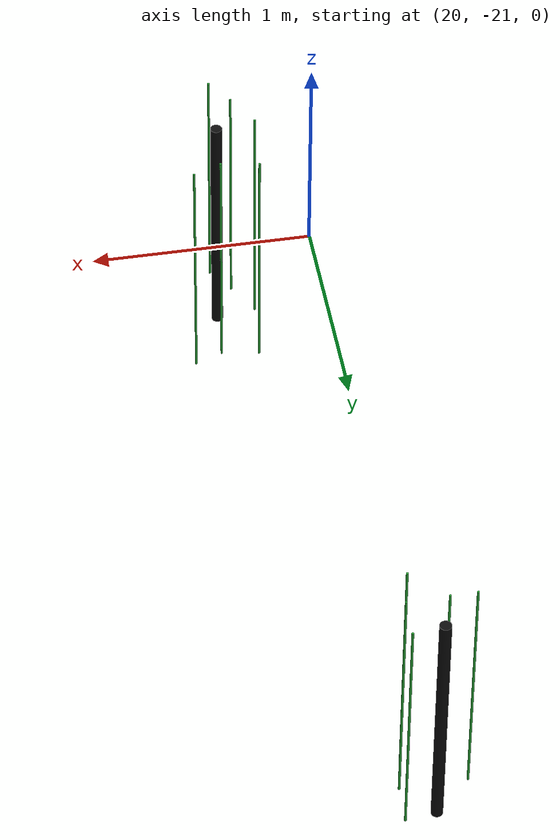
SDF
<sdf version="1.6">
 <world name="default">
  <model name="pole_11">
   <static>1</static>
   <pose>20.08 -17.6 0.575 0 -0 0</pose>
   <link name="link">
    <collision name="collision">
     <geometry><cylinder><length>1.15</length><radius>0.025</radius></cylinder></geometry>
    </collision>
    <visual name="visual">
     <geometry><cylinder><length>1.15</length><radius>0.025</radius></cylinder></geometry>
     <material>
      <script><uri>file://media/materials/scripts/gazebo.material</uri><name>Gazebo/Chrome</name></script>
      <shader type="vertex"><normal_map>__default__</normal_map></shader>
      <emissive>0.1 0.1 0.1 1</emissive>
      <specular>0.01 0.01 0.01 1</specular>
      <ambient>0.5 0.5 0.5 1</ambient>
      <diffuse>0.05 0.05 0.05 1</diffuse>
     </material>
    </visual>
   </link>
  </model>
  <model name="pole_12">
   <static>1</static>
   <pose>20.5 -20.55 0.575 0 -0 0</pose>
   <link name="link">
    <collision name="collision">
     <geometry><cylinder><length>1.15</length><radius>0.025</radius></cylinder></geometry>
    </collision>
    <visual name="visual">
     <geometry><cylinder><length>1.15</length><radius>0.025</radius></cylinder></geometry>
     <material>
      <script><uri>file://media/materials/scripts/gazebo.material</uri><name>Gazebo/Chrome</name></script>
      <shader type="vertex"><normal_map>__default__</normal_map></shader>
      <emissive>0.1 0.1 0.1 1</emissive>
      <specular>0.01 0.01 0.01 1</specular>
      <ambient>0.5 0.5 0.5 1</ambient>
      <diffuse>0.05 0.05 0.05 1</diffuse>
     </material>
    </visual>
   </link>
  </model>
  <model name="pole_27_clone_clone_106">
   <link name="link">
    <inertial>
     <mass>1</mass>
     <inertia><ixx>1</ixx><ixy>0</ixy><ixz>0</ixz><iyy>1</iyy><iyz>0</iyz><izz>1</izz></inertia>
    </inertial>
    <visual name="visual">
     <geometry><cylinder><length>1.15</length><radius>0.005</radius></cylinder></geometry>
     <material>
      <script><uri>file://media/materials/scripts/gazebo.material</uri><name>Gazebo/Green</name></script>
      <shader type="vertex"><normal_map>__default__</normal_map></shader>
      <emissive>0 0.1 0 1</emissive>
      <specular>0 0.01 0 1</specular>
      <ambient>0 0.5 0 1</ambient>
      <diffuse>0 0.05 0 1</diffuse>
     </material>
    </visual>
    <collision name="collision">
     <geometry><cylinder><radius>0.005</radius><length>1.15</length></cylinder></geometry>
     <surface>
      <friction>
       <ode><mu>1</mu><mu2>1</mu2><fdir1>0 0 0</fdir1><slip1>0</slip1><slip2>0</slip2></ode>
       <torsional>
        <coefficient>1</coefficient>
        <patch_radius>0</patch_radius>
        <surface_radius>0</surface_radius>
        <use_patch_radius>1</use_patch_radius>
        <ode><slip>0</slip></ode>
       </torsional>
      </friction>
      <bounce><restitution_coefficient>0</restitution_coefficient><threshold>1e+06</threshold></bounce>
      <contact>
       <collide_without_contact>0</collide_without_contact>
       <collide_without_contact_bitmask>1</collide_without_contact_bitmask>
       <collide_bitmask>1</collide_bitmask>
       <ode>
        <soft_cfm>0</soft_cfm>
        <soft_erp>0.2</soft_erp>
        <kp>1e+13</kp>
        <kd>1</kd>
        <max_vel>0.01</max_vel>
        <min_depth>0</min_depth>
       </ode>
       <bullet>
        <split_impulse>1</split_impulse>
        <split_impulse_penetration_threshold>-0.01</split_impulse_penetration_threshold>
        <soft_cfm>0</soft_cfm>
        <soft_erp>0.2</soft_erp>
        <kp>1e+13</kp>
        <kd>1</kd>
       </bullet>
      </contact>
     </surface>
    </collision>
   </link>
   <static>1</static>
   <pose>19.9208 -17.7497 0.575 0 -0 0</pose>
  </model>
  <model name="pole_27_clone_clone_111">
   <link name="link">
    <inertial>
     <mass>1</mass>
     <inertia><ixx>1</ixx><ixy>0</ixy><ixz>0</ixz><iyy>1</iyy><iyz>0</iyz><izz>1</izz></inertia>
    </inertial>
    <visual name="visual">
     <geometry><cylinder><length>1.15</length><radius>0.005</radius></cylinder></geometry>
     <material>
      <script><uri>file://media/materials/scripts/gazebo.material</uri><name>Gazebo/Green</name></script>
      <shader type="vertex"><normal_map>__default__</normal_map></shader>
      <emissive>0 0.1 0 1</emissive>
      <specular>0 0.01 0 1</specular>
      <ambient>0 0.5 0 1</ambient>
      <diffuse>0 0.05 0 1</diffuse>
     </material>
    </visual>
    <collision name="collision">
     <geometry><cylinder><radius>0.005</radius><length>1.15</length></cylinder></geometry>
     <surface>
      <friction>
       <ode><mu>1</mu><mu2>1</mu2><fdir1>0 0 0</fdir1><slip1>0</slip1><slip2>0</slip2></ode>
       <torsional>
        <coefficient>1</coefficient>
        <patch_radius>0</patch_radius>
        <surface_radius>0</surface_radius>
        <use_patch_radius>1</use_patch_radius>
        <ode><slip>0</slip></ode>
       </torsional>
      </friction>
      <bounce><restitution_coefficient>0</restitution_coefficient><threshold>1e+06</threshold></bounce>
      <contact>
       <collide_without_contact>0</collide_without_contact>
       <collide_without_contact_bitmask>1</collide_without_contact_bitmask>
       <collide_bitmask>1</collide_bitmask>
       <ode>
        <soft_cfm>0</soft_cfm>
        <soft_erp>0.2</soft_erp>
        <kp>1e+13</kp>
        <kd>1</kd>
        <max_vel>0.01</max_vel>
        <min_depth>0</min_depth>
       </ode>
       <bullet>
        <split_impulse>1</split_impulse>
        <split_impulse_penetration_threshold>-0.01</split_impulse_penetration_threshold>
        <soft_cfm>0</soft_cfm>
        <soft_erp>0.2</soft_erp>
        <kp>1e+13</kp>
        <kd>1</kd>
       </bullet>
      </contact>
     </surface>
    </collision>
   </link>
   <static>1</static>
   <pose>20.0321 -17.7493 0.575 0 -0 0</pose>
  </model>
  <model name="pole_27_clone_clone_112">
   <link name="link">
    <inertial>
     <mass>1</mass>
     <inertia><ixx>1</ixx><ixy>0</ixy><ixz>0</ixz><iyy>1</iyy><iyz>0</iyz><izz>1</izz></inertia>
    </inertial>
    <visual name="visual">
     <geometry><cylinder><length>1.15</length><radius>0.005</radius></cylinder></geometry>
     <material>
      <script><uri>file://media/materials/scripts/gazebo.material</uri><name>Gazebo/Green</name></script>
      <shader type="vertex"><normal_map>__default__</normal_map></shader>
      <emissive>0 0.1 0 1</emissive>
      <specular>0 0.01 0 1</specular>
      <ambient>0 0.5 0 1</ambient>
      <diffuse>0 0.05 0 1</diffuse>
     </material>
    </visual>
    <collision name="collision">
     <geometry><cylinder><radius>0.005</radius><length>1.15</length></cylinder></geometry>
     <surface>
      <friction>
       <ode><mu>1</mu><mu2>1</mu2><fdir1>0 0 0</fdir1><slip1>0</slip1><slip2>0</slip2></ode>
       <torsional>
        <coefficient>1</coefficient>
        <patch_radius>0</patch_radius>
        <surface_radius>0</surface_radius>
        <use_patch_radius>1</use_patch_radius>
        <ode><slip>0</slip></ode>
       </torsional>
      </friction>
      <bounce><restitution_coefficient>0</restitution_coefficient><threshold>1e+06</threshold></bounce>
      <contact>
       <collide_without_contact>0</collide_without_contact>
       <collide_without_contact_bitmask>1</collide_without_contact_bitmask>
       <collide_bitmask>1</collide_bitmask>
       <ode>
        <soft_cfm>0</soft_cfm>
        <soft_erp>0.2</soft_erp>
        <kp>1e+13</kp>
        <kd>1</kd>
        <max_vel>0.01</max_vel>
        <min_depth>0</min_depth>
       </ode>
       <bullet>
        <split_impulse>1</split_impulse>
        <split_impulse_penetration_threshold>-0.01</split_impulse_penetration_threshold>
        <soft_cfm>0</soft_cfm>
        <soft_erp>0.2</soft_erp>
        <kp>1e+13</kp>
        <kd>1</kd>
       </bullet>
      </contact>
     </surface>
    </collision>
   </link>
   <static>1</static>
   <pose>20.2079 -17.7436 0.575 0 -0 0</pose>
  </model>
  <model name="pole_27_clone_clone_113">
   <link name="link">
    <inertial>
     <mass>1</mass>
     <inertia><ixx>1</ixx><ixy>0</ixy><ixz>0</ixz><iyy>1</iyy><iyz>0</iyz><izz>1</izz></inertia>
    </inertial>
    <visual name="visual">
     <geometry><cylinder><length>1.15</length><radius>0.005</radius></cylinder></geometry>
     <material>
      <script><uri>file://media/materials/scripts/gazebo.material</uri><name>Gazebo/Green</name></script>
      <shader type="vertex"><normal_map>__default__</normal_map></shader>
      <emissive>0 0.1 0 1</emissive>
      <specular>0 0.01 0 1</specular>
      <ambient>0 0.5 0 1</ambient>
      <diffuse>0 0.05 0 1</diffuse>
     </material>
    </visual>
    <collision name="collision">
     <geometry><cylinder><radius>0.005</radius><length>1.15</length></cylinder></geometry>
     <surface>
      <friction>
       <ode><mu>1</mu><mu2>1</mu2><fdir1>0 0 0</fdir1><slip1>0</slip1><slip2>0</slip2></ode>
       <torsional>
        <coefficient>1</coefficient>
        <patch_radius>0</patch_radius>
        <surface_radius>0</surface_radius>
        <use_patch_radius>1</use_patch_radius>
        <ode><slip>0</slip></ode>
       </torsional>
      </friction>
      <bounce><restitution_coefficient>0</restitution_coefficient><threshold>1e+06</threshold></bounce>
      <contact>
       <collide_without_contact>0</collide_without_contact>
       <collide_without_contact_bitmask>1</collide_without_contact_bitmask>
       <collide_bitmask>1</collide_bitmask>
       <ode>
        <soft_cfm>0</soft_cfm>
        <soft_erp>0.2</soft_erp>
        <kp>1e+13</kp>
        <kd>1</kd>
        <max_vel>0.01</max_vel>
        <min_depth>0</min_depth>
       </ode>
       <bullet>
        <split_impulse>1</split_impulse>
        <split_impulse_penetration_threshold>-0.01</split_impulse_penetration_threshold>
        <soft_cfm>0</soft_cfm>
        <soft_erp>0.2</soft_erp>
        <kp>1e+13</kp>
        <kd>1</kd>
       </bullet>
      </contact>
     </surface>
    </collision>
   </link>
   <static>1</static>
   <pose>20.2136 -17.5802 0.575 0 -0 0</pose>
  </model>
  <model name="pole_27_clone_clone_115">
   <link name="link">
    <inertial>
     <mass>1</mass>
     <inertia><ixx>1</ixx><ixy>0</ixy><ixz>0</ixz><iyy>1</iyy><iyz>0</iyz><izz>1</izz></inertia>
    </inertial>
    <visual name="visual">
     <geometry><cylinder><length>1.15</length><radius>0.005</radius></cylinder></geometry>
     <material>
      <script><uri>file://media/materials/scripts/gazebo.material</uri><name>Gazebo/Green</name></script>
      <shader type="vertex"><normal_map>__default__</normal_map></shader>
      <emissive>0 0.1 0 1</emissive>
      <specular>0 0.01 0 1</specular>
      <ambient>0 0.5 0 1</ambient>
      <diffuse>0 0.05 0 1</diffuse>
     </material>
    </visual>
    <collision name="collision">
     <geometry><cylinder><radius>0.005</radius><length>1.15</length></cylinder></geometry>
     <surface>
      <friction>
       <ode><mu>1</mu><mu2>1</mu2><fdir1>0 0 0</fdir1><slip1>0</slip1><slip2>0</slip2></ode>
       <torsional>
        <coefficient>1</coefficient>
        <patch_radius>0</patch_radius>
        <surface_radius>0</surface_radius>
        <use_patch_radius>1</use_patch_radius>
        <ode><slip>0</slip></ode>
       </torsional>
      </friction>
      <bounce><restitution_coefficient>0</restitution_coefficient><threshold>1e+06</threshold></bounce>
      <contact>
       <collide_without_contact>0</collide_without_contact>
       <collide_without_contact_bitmask>1</collide_without_contact_bitmask>
       <collide_bitmask>1</collide_bitmask>
       <ode>
        <soft_cfm>0</soft_cfm>
        <soft_erp>0.2</soft_erp>
        <kp>1e+13</kp>
        <kd>1</kd>
        <max_vel>0.01</max_vel>
        <min_depth>0</min_depth>
       </ode>
       <bullet>
        <split_impulse>1</split_impulse>
        <split_impulse_penetration_threshold>-0.01</split_impulse_penetration_threshold>
        <soft_cfm>0</soft_cfm>
        <soft_erp>0.2</soft_erp>
        <kp>1e+13</kp>
        <kd>1</kd>
       </bullet>
      </contact>
     </surface>
    </collision>
   </link>
   <static>1</static>
   <pose>20.1755 -17.8906 0.575 0 -0 0</pose>
  </model>
  <model name="pole_27_clone_clone_116">
   <link name="link">
    <inertial>
     <mass>1</mass>
     <inertia><ixx>1</ixx><ixy>0</ixy><ixz>0</ixz><iyy>1</iyy><iyz>0</iyz><izz>1</izz></inertia>
    </inertial>
    <visual name="visual">
     <geometry><cylinder><length>1.15</length><radius>0.005</radius></cylinder></geometry>
     <material>
      <script><uri>file://media/materials/scripts/gazebo.material</uri><name>Gazebo/Green</name></script>
      <shader type="vertex"><normal_map>__default__</normal_map></shader>
      <emissive>0 0.1 0 1</emissive>
      <specular>0 0.01 0 1</specular>
      <ambient>0 0.5 0 1</ambient>
      <diffuse>0 0.05 0 1</diffuse>
     </material>
    </visual>
    <collision name="collision">
     <geometry><cylinder><radius>0.005</radius><length>1.15</length></cylinder></geometry>
     <surface>
      <friction>
       <ode><mu>1</mu><mu2>1</mu2><fdir1>0 0 0</fdir1><slip1>0</slip1><slip2>0</slip2></ode>
       <torsional>
        <coefficient>1</coefficient>
        <patch_radius>0</patch_radius>
        <surface_radius>0</surface_radius>
        <use_patch_radius>1</use_patch_radius>
        <ode><slip>0</slip></ode>
       </torsional>
      </friction>
      <bounce><restitution_coefficient>0</restitution_coefficient><threshold>1e+06</threshold></bounce>
      <contact>
       <collide_without_contact>0</collide_without_contact>
       <collide_without_contact_bitmask>1</collide_without_contact_bitmask>
       <collide_bitmask>1</collide_bitmask>
       <ode>
        <soft_cfm>0</soft_cfm>
        <soft_erp>0.2</soft_erp>
        <kp>1e+13</kp>
        <kd>1</kd>
        <max_vel>0.01</max_vel>
        <min_depth>0</min_depth>
       </ode>
       <bullet>
        <split_impulse>1</split_impulse>
        <split_impulse_penetration_threshold>-0.01</split_impulse_penetration_threshold>
        <soft_cfm>0</soft_cfm>
        <soft_erp>0.2</soft_erp>
        <kp>1e+13</kp>
        <kd>1</kd>
       </bullet>
      </contact>
     </surface>
    </collision>
   </link>
   <static>1</static>
   <pose>20.3268 -20.5764 0.575 0 -0 0</pose>
  </model>
  <model name="pole_27_clone_clone_118">
   <link name="link">
    <inertial>
     <mass>1</mass>
     <inertia><ixx>1</ixx><ixy>0</ixy><ixz>0</ixz><iyy>1</iyy><iyz>0</iyz><izz>1</izz></inertia>
    </inertial>
    <visual name="visual">
     <geometry><cylinder><length>1.15</length><radius>0.005</radius></cylinder></geometry>
     <material>
      <script><uri>file://media/materials/scripts/gazebo.material</uri><name>Gazebo/Green</name></script>
      <shader type="vertex"><normal_map>__default__</normal_map></shader>
      <emissive>0 0.1 0 1</emissive>
      <specular>0 0.01 0 1</specular>
      <ambient>0 0.5 0 1</ambient>
      <diffuse>0 0.05 0 1</diffuse>
     </material>
    </visual>
    <collision name="collision">
     <geometry><cylinder><radius>0.005</radius><length>1.15</length></cylinder></geometry>
     <surface>
      <friction>
       <ode><mu>1</mu><mu2>1</mu2><fdir1>0 0 0</fdir1><slip1>0</slip1><slip2>0</slip2></ode>
       <torsional>
        <coefficient>1</coefficient>
        <patch_radius>0</patch_radius>
        <surface_radius>0</surface_radius>
        <use_patch_radius>1</use_patch_radius>
        <ode><slip>0</slip></ode>
       </torsional>
      </friction>
      <bounce><restitution_coefficient>0</restitution_coefficient><threshold>1e+06</threshold></bounce>
      <contact>
       <collide_without_contact>0</collide_without_contact>
       <collide_without_contact_bitmask>1</collide_without_contact_bitmask>
       <collide_bitmask>1</collide_bitmask>
       <ode>
        <soft_cfm>0</soft_cfm>
        <soft_erp>0.2</soft_erp>
        <kp>1e+13</kp>
        <kd>1</kd>
        <max_vel>0.01</max_vel>
        <min_depth>0</min_depth>
       </ode>
       <bullet>
        <split_impulse>1</split_impulse>
        <split_impulse_penetration_threshold>-0.01</split_impulse_penetration_threshold>
        <soft_cfm>0</soft_cfm>
        <soft_erp>0.2</soft_erp>
        <kp>1e+13</kp>
        <kd>1</kd>
       </bullet>
      </contact>
     </surface>
    </collision>
   </link>
   <static>1</static>
   <pose>20.5169 -20.3268 0.575 0 -0 0</pose>
  </model>
  <model name="pole_27_clone_clone_119">
   <link name="link">
    <inertial>
     <mass>1</mass>
     <inertia><ixx>1</ixx><ixy>0</ixy><ixz>0</ixz><iyy>1</iyy><iyz>0</iyz><izz>1</izz></inertia>
    </inertial>
    <visual name="visual">
     <geometry><cylinder><length>1.15</length><radius>0.005</radius></cylinder></geometry>
     <material>
      <script><uri>file://media/materials/scripts/gazebo.material</uri><name>Gazebo/Green</name></script>
      <shader type="vertex"><normal_map>__default__</normal_map></shader>
      <emissive>0 0.1 0 1</emissive>
      <specular>0 0.01 0 1</specular>
      <ambient>0 0.5 0 1</ambient>
      <diffuse>0 0.05 0 1</diffuse>
     </material>
    </visual>
    <collision name="collision">
     <geometry><cylinder><radius>0.005</radius><length>1.15</length></cylinder></geometry>
     <surface>
      <friction>
       <ode><mu>1</mu><mu2>1</mu2><fdir1>0 0 0</fdir1><slip1>0</slip1><slip2>0</slip2></ode>
       <torsional>
        <coefficient>1</coefficient>
        <patch_radius>0</patch_radius>
        <surface_radius>0</surface_radius>
        <use_patch_radius>1</use_patch_radius>
        <ode><slip>0</slip></ode>
       </torsional>
      </friction>
      <bounce><restitution_coefficient>0</restitution_coefficient><threshold>1e+06</threshold></bounce>
      <contact>
       <collide_without_contact>0</collide_without_contact>
       <collide_without_contact_bitmask>1</collide_without_contact_bitmask>
       <collide_bitmask>1</collide_bitmask>
       <ode>
        <soft_cfm>0</soft_cfm>
        <soft_erp>0.2</soft_erp>
        <kp>1e+13</kp>
        <kd>1</kd>
        <max_vel>0.01</max_vel>
        <min_depth>0</min_depth>
       </ode>
       <bullet>
        <split_impulse>1</split_impulse>
        <split_impulse_penetration_threshold>-0.01</split_impulse_penetration_threshold>
        <soft_cfm>0</soft_cfm>
        <soft_erp>0.2</soft_erp>
        <kp>1e+13</kp>
        <kd>1</kd>
       </bullet>
      </contact>
     </surface>
    </collision>
   </link>
   <static>1</static>
   <pose>20.3526 -20.3002 0.575 0 -0 0</pose>
  </model>
  <model name="pole_27_clone_clone_120">
   <link name="link">
    <inertial>
     <mass>1</mass>
     <inertia><ixx>1</ixx><ixy>0</ixy><ixz>0</ixz><iyy>1</iyy><iyz>0</iyz><izz>1</izz></inertia>
    </inertial>
    <visual name="visual">
     <geometry><cylinder><length>1.15</length><radius>0.005</radius></cylinder></geometry>
     <material>
      <script><uri>file://media/materials/scripts/gazebo.material</uri><name>Gazebo/Green</name></script>
      <shader type="vertex"><normal_map>__default__</normal_map></shader>
      <emissive>0 0.1 0 1</emissive>
      <specular>0 0.01 0 1</specular>
      <ambient>0 0.5 0 1</ambient>
      <diffuse>0 0.05 0 1</diffuse>
     </material>
    </visual>
    <collision name="collision">
     <geometry><cylinder><radius>0.005</radius><length>1.15</length></cylinder></geometry>
     <surface>
      <friction>
       <ode><mu>1</mu><mu2>1</mu2><fdir1>0 0 0</fdir1><slip1>0</slip1><slip2>0</slip2></ode>
       <torsional>
        <coefficient>1</coefficient>
        <patch_radius>0</patch_radius>
        <surface_radius>0</surface_radius>
        <use_patch_radius>1</use_patch_radius>
        <ode><slip>0</slip></ode>
       </torsional>
      </friction>
      <bounce><restitution_coefficient>0</restitution_coefficient><threshold>1e+06</threshold></bounce>
      <contact>
       <collide_without_contact>0</collide_without_contact>
       <collide_without_contact_bitmask>1</collide_without_contact_bitmask>
       <collide_bitmask>1</collide_bitmask>
       <ode>
        <soft_cfm>0</soft_cfm>
        <soft_erp>0.2</soft_erp>
        <kp>1e+13</kp>
        <kd>1</kd>
        <max_vel>0.01</max_vel>
        <min_depth>0</min_depth>
       </ode>
       <bullet>
        <split_impulse>1</split_impulse>
        <split_impulse_penetration_threshold>-0.01</split_impulse_penetration_threshold>
        <soft_cfm>0</soft_cfm>
        <soft_erp>0.2</soft_erp>
        <kp>1e+13</kp>
        <kd>1</kd>
       </bullet>
      </contact>
     </surface>
    </collision>
   </link>
   <static>1</static>
   <pose>20.6388 -20.2808 0.575 0 -0 0</pose>
  </model>
  <model name="pole_27_clone_clone_122">
   <link name="link">
    <inertial>
     <mass>1</mass>
     <inertia><ixx>1</ixx><ixy>0</ixy><ixz>0</ixz><iyy>1</iyy><iyz>0</iyz><izz>1</izz></inertia>
    </inertial>
    <visual name="visual">
     <geometry><cylinder><length>1.15</length><radius>0.005</radius></cylinder></geometry>
     <material>
      <script><uri>file://media/materials/scripts/gazebo.material</uri><name>Gazebo/Green</name></script>
      <shader type="vertex"><normal_map>__default__</normal_map></shader>
      <emissive>0 0.1 0 1</emissive>
      <specular>0 0.01 0 1</specular>
      <ambient>0 0.5 0 1</ambient>
      <diffuse>0 0.05 0 1</diffuse>
     </material>
    </visual>
    <collision name="collision">
     <geometry><cylinder><radius>0.005</radius><length>1.15</length></cylinder></geometry>
     <surface>
      <friction>
       <ode><mu>1</mu><mu2>1</mu2><fdir1>0 0 0</fdir1><slip1>0</slip1><slip2>0</slip2></ode>
       <torsional>
        <coefficient>1</coefficient>
        <patch_radius>0</patch_radius>
        <surface_radius>0</surface_radius>
        <use_patch_radius>1</use_patch_radius>
        <ode><slip>0</slip></ode>
       </torsional>
      </friction>
      <bounce><restitution_coefficient>0</restitution_coefficient><threshold>1e+06</threshold></bounce>
      <contact>
       <collide_without_contact>0</collide_without_contact>
       <collide_without_contact_bitmask>1</collide_without_contact_bitmask>
       <collide_bitmask>1</collide_bitmask>
       <ode>
        <soft_cfm>0</soft_cfm>
        <soft_erp>0.2</soft_erp>
        <kp>1e+13</kp>
        <kd>1</kd>
        <max_vel>0.01</max_vel>
        <min_depth>0</min_depth>
       </ode>
       <bullet>
        <split_impulse>1</split_impulse>
        <split_impulse_penetration_threshold>-0.01</split_impulse_penetration_threshold>
        <soft_cfm>0</soft_cfm>
        <soft_erp>0.2</soft_erp>
        <kp>1e+13</kp>
        <kd>1</kd>
       </bullet>
      </contact>
     </surface>
    </collision>
   </link>
   <static>1</static>
   <pose>20.4095 -20.7238 0.575 0 -0 0</pose>
  </model>
  <model name="pole_27_clone_clone_124">
   <link name="link">
    <inertial>
     <mass>1</mass>
     <inertia><ixx>1</ixx><ixy>0</ixy><ixz>0</ixz><iyy>1</iyy><iyz>0</iyz><izz>1</izz></inertia>
    </inertial>
    <visual name="visual">
     <geometry><cylinder><length>1.15</length><radius>0.005</radius></cylinder></geometry>
     <material>
      <script><uri>file://media/materials/scripts/gazebo.material</uri><name>Gazebo/Green</name></script>
      <shader type="vertex"><normal_map>__default__</normal_map></shader>
      <emissive>0 0.1 0 1</emissive>
      <specular>0 0.01 0 1</specular>
      <ambient>0 0.5 0 1</ambient>
      <diffuse>0 0.05 0 1</diffuse>
     </material>
    </visual>
    <collision name="collision">
     <geometry><cylinder><radius>0.005</radius><length>1.15</length></cylinder></geometry>
     <surface>
      <friction>
       <ode><mu>1</mu><mu2>1</mu2><fdir1>0 0 0</fdir1><slip1>0</slip1><slip2>0</slip2></ode>
       <torsional>
        <coefficient>1</coefficient>
        <patch_radius>0</patch_radius>
        <surface_radius>0</surface_radius>
        <use_patch_radius>1</use_patch_radius>
        <ode><slip>0</slip></ode>
       </torsional>
      </friction>
      <bounce><restitution_coefficient>0</restitution_coefficient><threshold>1e+06</threshold></bounce>
      <contact>
       <collide_without_contact>0</collide_without_contact>
       <collide_without_contact_bitmask>1</collide_without_contact_bitmask>
       <collide_bitmask>1</collide_bitmask>
       <ode>
        <soft_cfm>0</soft_cfm>
        <soft_erp>0.2</soft_erp>
        <kp>1e+13</kp>
        <kd>1</kd>
        <max_vel>0.01</max_vel>
        <min_depth>0</min_depth>
       </ode>
       <bullet>
        <split_impulse>1</split_impulse>
        <split_impulse_penetration_threshold>-0.01</split_impulse_penetration_threshold>
        <soft_cfm>0</soft_cfm>
        <soft_erp>0.2</soft_erp>
        <kp>1e+13</kp>
        <kd>1</kd>
       </bullet>
      </contact>
     </surface>
    </collision>
   </link>
   <static>1</static>
   <pose>20.487 -20.8412 0.575 0 -0 0</pose>
  </model>
 </world>
</sdf>
